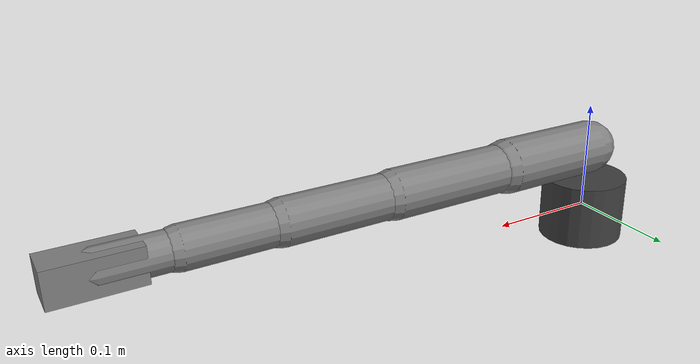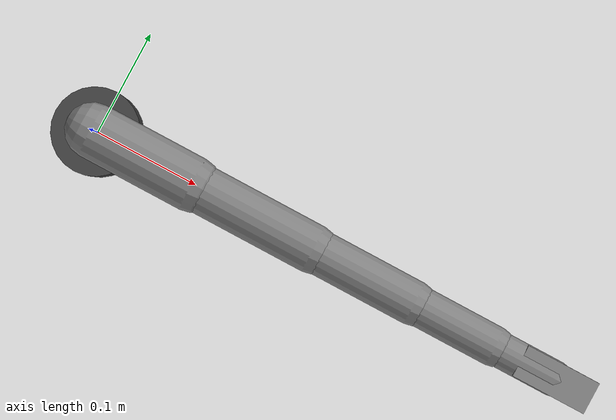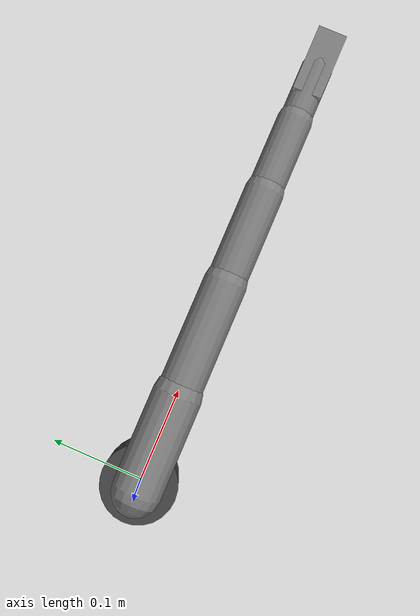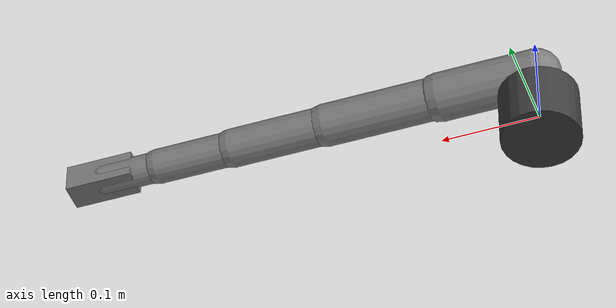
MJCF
<mujoco model="generic_6dof_arm">
  <compiler angle="degree" coordinate="local"/>
  <option timestep="0.002" gravity="0 0 -9.81"/>

  <worldbody>
    <body name="arm_base" pos="0 0 0">
      <geom type="cylinder" size="0.04 0.03" mass="0.2" rgba="0.25 0.25 0.25 1"/>
      <body name="link_1" pos="0 0 0.06">
        <joint name="joint_1" type="hinge" axis="0 0 1" range="-180 180"/>
        <geom type="capsule" fromto="0 0 0 0.10 0 0" size="0.025" mass="0.2"/>
        <body name="link_2" pos="0.10 0 0">
          <joint name="joint_2" type="hinge" axis="0 1 0" range="-120 120"/>
          <geom type="capsule" fromto="0 0 0 0.12 0 0" size="0.022" mass="0.2"/>
          <body name="link_3" pos="0.12 0 0">
            <joint name="joint_3" type="hinge" axis="0 1 0" range="-120 120"/>
            <geom type="capsule" fromto="0 0 0 0.10 0 0" size="0.020" mass="0.15"/>
            <body name="link_4" pos="0.10 0 0">
              <joint name="joint_4" type="hinge" axis="1 0 0" range="-180 180"/>
              <geom type="capsule" fromto="0 0 0 0.08 0 0" size="0.018" mass="0.12"/>
              <body name="link_5" pos="0.08 0 0">
                <joint name="joint_5" type="hinge" axis="0 1 0" range="-120 120"/>
                <geom type="capsule" fromto="0 0 0 0.06 0 0" size="0.016" mass="0.1"/>
                <body name="link_6" pos="0.06 0 0">
                  <joint name="joint_6" type="hinge" axis="1 0 0" range="-180 180"/>
                  <geom type="box" size="0.035 0.015 0.015" mass="0.08"/>
                </body>
              </body>
            </body>
          </body>
        </body>
      </body>
    </body>
  </worldbody>
</mujoco>
